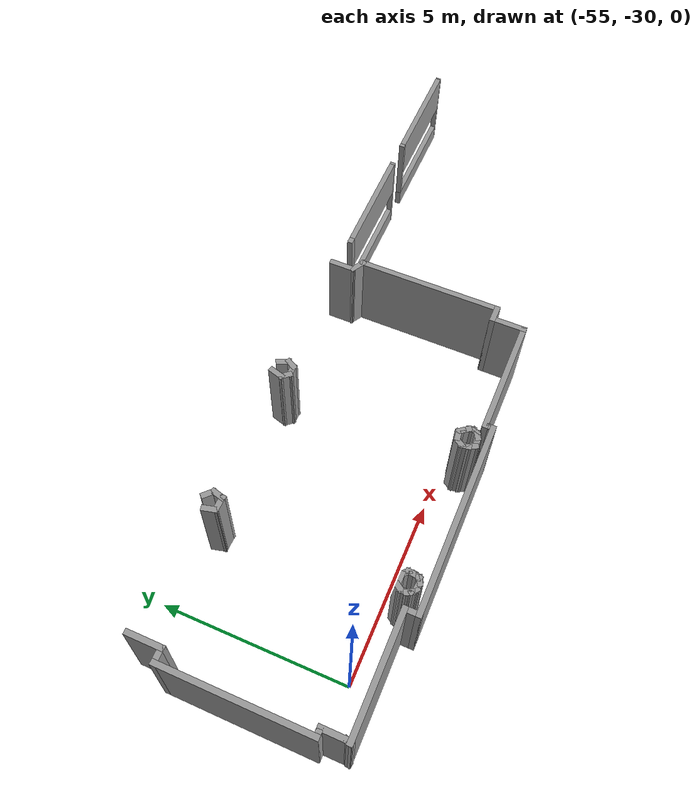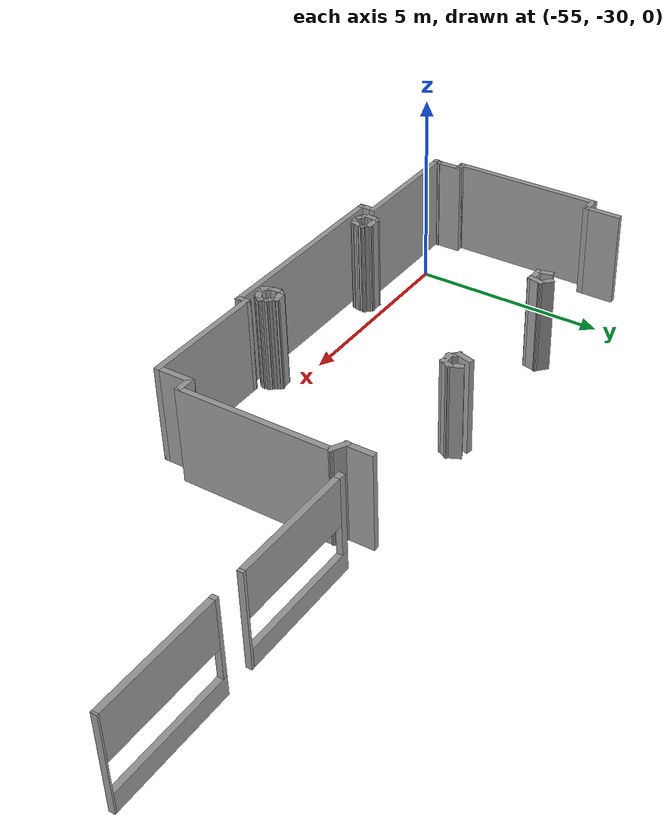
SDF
<sdf version="1.7">
 <model name="TD_n1">
  <pose>-28.4203 -15.5404 0 0 -0 0</pose>
  <link name="Wall_100">
   <collision name="Wall_100_Collision">
    <geometry><box><size>0.417153 0.15 2.5</size></box></geometry>
    <pose>0 0 1.25 0 -0 0</pose>
   </collision>
   <visual name="Wall_100_Visual">
    <pose>0 0 1.25 0 -0 0</pose>
    <geometry><box><size>0.417153 0.15 2.5</size></box></geometry>
    <material>
     <script><uri>file://media/materials/scripts/gazebo.material</uri><name>Gazebo/Grey</name></script>
     <ambient>1 1 1 1</ambient>
    </material>
    <meta><layer>0</layer></meta>
   </visual>
   <pose>-24.2621 -10.0568 0 0 -0 -1.81236</pose>
  </link>
  <link name="Wall_101">
   <collision name="Wall_101_Collision">
    <geometry><box><size>0.488531 0.15 2.5</size></box></geometry>
    <pose>0 0 1.25 0 -0 0</pose>
   </collision>
   <visual name="Wall_101_Visual">
    <pose>0 0 1.25 0 -0 0</pose>
    <geometry><box><size>0.488531 0.15 2.5</size></box></geometry>
    <material>
     <script><uri>file://media/materials/scripts/gazebo.material</uri><name>Gazebo/Grey</name></script>
     <ambient>1 1 1 1</ambient>
    </material>
    <meta><layer>0</layer></meta>
   </visual>
   <pose>-24.4633 -10.1808 0 0 -0 3.10827</pose>
  </link>
  <link name="Wall_102">
   <collision name="Wall_102_Collision">
    <geometry><box><size>0.429005 0.15 2.5</size></box></geometry>
    <pose>0 0 1.25 0 -0 0</pose>
   </collision>
   <visual name="Wall_102_Visual">
    <pose>0 0 1.25 0 -0 0</pose>
    <geometry><box><size>0.429005 0.15 2.5</size></box></geometry>
    <material>
     <script><uri>file://media/materials/scripts/gazebo.material</uri><name>Gazebo/Grey</name></script>
     <ambient>1 1 1 1</ambient>
    </material>
    <meta><layer>0</layer></meta>
   </visual>
   <pose>-24.6663 -10.0398 0 0 -0 1.81577</pose>
  </link>
  <link name="Wall_105">
   <collision name="Wall_105_Collision">
    <geometry><box><size>0.408933 0.15 2.5</size></box></geometry>
    <pose>0 0 1.25 0 -0 0</pose>
   </collision>
   <visual name="Wall_105_Visual">
    <pose>0 0 1.25 0 -0 0</pose>
    <geometry><box><size>0.408933 0.15 2.5</size></box></geometry>
    <material>
     <script><uri>file://media/materials/scripts/gazebo.material</uri><name>Gazebo/Grey</name></script>
     <ambient>1 1 1 1</ambient>
    </material>
    <meta><layer>0</layer></meta>
   </visual>
   <pose>-20.2753 -9.91578 0 0 -0 -1.12014</pose>
  </link>
  <link name="Wall_106">
   <collision name="Wall_106_Collision">
    <geometry><box><size>0.355222 0.15 2.5</size></box></geometry>
    <pose>0 0 1.25 0 -0 0</pose>
   </collision>
   <visual name="Wall_106_Visual">
    <pose>0 0 1.25 0 -0 0</pose>
    <geometry><box><size>0.355222 0.15 2.5</size></box></geometry>
    <material>
     <script><uri>file://media/materials/scripts/gazebo.material</uri><name>Gazebo/Grey</name></script>
     <ambient>1 1 1 1</ambient>
    </material>
    <meta><layer>0</layer></meta>
   </visual>
   <pose>-20.2678 -10.1225 0 0 -0 -2.06722</pose>
  </link>
  <link name="Wall_107">
   <collision name="Wall_107_Collision">
    <geometry><box><size>0.3906 0.15 2.5</size></box></geometry>
    <pose>0 0 1.25 0 -0 0</pose>
   </collision>
   <visual name="Wall_107_Visual">
    <pose>0 0 1.25 0 -0 0</pose>
    <geometry><box><size>0.3906 0.15 2.5</size></box></geometry>
    <material>
     <script><uri>file://media/materials/scripts/gazebo.material</uri><name>Gazebo/Grey</name></script>
     <ambient>1 1 1 1</ambient>
    </material>
    <meta><layer>0</layer></meta>
   </visual>
   <pose>-20.437 -10.2128 0 0 -0 3.14159</pose>
  </link>
  <link name="Wall_108">
   <collision name="Wall_108_Collision">
    <geometry><box><size>0.368561 0.15 2.5</size></box></geometry>
    <pose>0 0 1.25 0 -0 0</pose>
   </collision>
   <visual name="Wall_108_Visual">
    <pose>0 0 1.25 0 -0 0</pose>
    <geometry><box><size>0.368561 0.15 2.5</size></box></geometry>
    <material>
     <script><uri>file://media/materials/scripts/gazebo.material</uri><name>Gazebo/Grey</name></script>
     <ambient>1 1 1 1</ambient>
    </material>
    <meta><layer>0</layer></meta>
   </visual>
   <pose>-20.6287 -10.1301 0 0 -0 2.28315</pose>
  </link>
  <link name="Wall_109">
   <collision name="Wall_109_Collision">
    <geometry><box><size>0.454671 0.15 2.5</size></box></geometry>
    <pose>0 0 1.25 0 -0 0</pose>
   </collision>
   <visual name="Wall_109_Visual">
    <pose>0 0 1.25 0 -0 0</pose>
    <geometry><box><size>0.454671 0.15 2.5</size></box></geometry>
    <material>
     <script><uri>file://media/materials/scripts/gazebo.material</uri><name>Gazebo/Grey</name></script>
     <ambient>1 1 1 1</ambient>
    </material>
    <meta><layer>0</layer></meta>
   </visual>
   <pose>-20.6588 -9.90075 0 0 -0 1.29589</pose>
  </link>
  <link name="Wall_111">
   <collision name="Wall_111_Collision">
    <geometry><box><size>0.38911 0.15 2.5</size></box></geometry>
    <pose>0 0 1.25 0 -0 0</pose>
   </collision>
   <visual name="Wall_111_Visual">
    <pose>0 0 1.25 0 -0 0</pose>
    <geometry><box><size>0.38911 0.15 2.5</size></box></geometry>
    <material>
     <script><uri>file://media/materials/scripts/gazebo.material</uri><name>Gazebo/Grey</name></script>
     <ambient>1 1 1 1</ambient>
    </material>
    <meta><layer>0</layer></meta>
   </visual>
   <pose>-24.4695 -14.7595 0 0 -0 0</pose>
  </link>
  <link name="Wall_112">
   <collision name="Wall_112_Collision">
    <geometry><box><size>0.315269 0.15 2.5</size></box></geometry>
    <pose>0 0 1.25 0 -0 0</pose>
   </collision>
   <visual name="Wall_112_Visual">
    <pose>0 0 1.25 0 -0 0</pose>
    <geometry><box><size>0.315269 0.15 2.5</size></box></geometry>
    <material>
     <script><uri>file://media/materials/scripts/gazebo.material</uri><name>Gazebo/Grey</name></script>
     <ambient>1 1 1 1</ambient>
    </material>
    <meta><layer>0</layer></meta>
   </visual>
   <pose>-24.293 -14.8191 0 0 -0 -0.806672</pose>
  </link>
  <link name="Wall_113">
   <collision name="Wall_113_Collision">
    <geometry><box><size>0.299897 0.15 2.5</size></box></geometry>
    <pose>0 0 1.25 0 -0 0</pose>
   </collision>
   <visual name="Wall_113_Visual">
    <pose>0 0 1.25 0 -0 0</pose>
    <geometry><box><size>0.299897 0.15 2.5</size></box></geometry>
    <material>
     <script><uri>file://media/materials/scripts/gazebo.material</uri><name>Gazebo/Grey</name></script>
     <ambient>1 1 1 1</ambient>
    </material>
    <meta><layer>0</layer></meta>
   </visual>
   <pose>-24.2383 -14.9534 0 0 -0 -1.60412</pose>
  </link>
  <link name="Wall_114">
   <collision name="Wall_114_Collision">
    <geometry><box><size>0.279075 0.15 2.5</size></box></geometry>
    <pose>0 0 1.25 0 -0 0</pose>
   </collision>
   <visual name="Wall_114_Visual">
    <pose>0 0 1.25 0 -0 0</pose>
    <geometry><box><size>0.279075 0.15 2.5</size></box></geometry>
    <material>
     <script><uri>file://media/materials/scripts/gazebo.material</uri><name>Gazebo/Grey</name></script>
     <ambient>1 1 1 1</ambient>
    </material>
    <meta><layer>0</layer></meta>
   </visual>
   <pose>-24.2582 -15.0901 0 0 -0 -1.8438</pose>
  </link>
  <link name="Wall_115">
   <collision name="Wall_115_Collision">
    <geometry><box><size>0.281258 0.15 2.5</size></box></geometry>
    <pose>0 0 1.25 0 -0 0</pose>
   </collision>
   <visual name="Wall_115_Visual">
    <pose>0 0 1.25 0 -0 0</pose>
    <geometry><box><size>0.281258 0.15 2.5</size></box></geometry>
    <material>
     <script><uri>file://media/materials/scripts/gazebo.material</uri><name>Gazebo/Grey</name></script>
     <ambient>1 1 1 1</ambient>
    </material>
    <meta><layer>0</layer></meta>
   </visual>
   <pose>-24.3353 -15.1796 0 0 -0 -2.71183</pose>
  </link>
  <link name="Wall_116">
   <collision name="Wall_116_Collision">
    <geometry><box><size>0.304445 0.15 2.5</size></box></geometry>
    <pose>0 0 1.25 0 -0 0</pose>
   </collision>
   <visual name="Wall_116_Visual">
    <pose>0 0 1.25 0 -0 0</pose>
    <geometry><box><size>0.304445 0.15 2.5</size></box></geometry>
    <material>
     <script><uri>file://media/materials/scripts/gazebo.material</uri><name>Gazebo/Grey</name></script>
     <ambient>1 1 1 1</ambient>
    </material>
    <meta><layer>0</layer></meta>
   </visual>
   <pose>-24.472 -15.202 0 0 -0 3.07717</pose>
  </link>
  <link name="Wall_117">
   <collision name="Wall_117_Collision">
    <geometry><box><size>0.281258 0.15 2.5</size></box></geometry>
    <pose>0 0 1.25 0 -0 0</pose>
   </collision>
   <visual name="Wall_117_Visual">
    <pose>0 0 1.25 0 -0 0</pose>
    <geometry><box><size>0.281258 0.15 2.5</size></box></geometry>
    <material>
     <script><uri>file://media/materials/scripts/gazebo.material</uri><name>Gazebo/Grey</name></script>
     <ambient>1 1 1 1</ambient>
    </material>
    <meta><layer>0</layer></meta>
   </visual>
   <pose>-24.6013 -15.1572 0 0 -0 2.49052</pose>
  </link>
  <link name="Wall_118">
   <collision name="Wall_118_Collision">
    <geometry><box><size>0.267863 0.15 2.5</size></box></geometry>
    <pose>0 0 1.25 0 -0 0</pose>
   </collision>
   <visual name="Wall_118_Visual">
    <pose>0 0 1.25 0 -0 0</pose>
    <geometry><box><size>0.267863 0.15 2.5</size></box></geometry>
    <material>
     <script><uri>file://media/materials/scripts/gazebo.material</uri><name>Gazebo/Grey</name></script>
     <ambient>1 1 1 1</ambient>
    </material>
    <meta><layer>0</layer></meta>
   </visual>
   <pose>-24.6808 -15.0652 0 0 -0 2.05331</pose>
  </link>
  <link name="Wall_119">
   <collision name="Wall_119_Collision">
    <geometry><box><size>0.299484 0.15 2.5</size></box></geometry>
    <pose>0 0 1.25 0 -0 0</pose>
   </collision>
   <visual name="Wall_119_Visual">
    <pose>0 0 1.25 0 -0 0</pose>
    <geometry><box><size>0.299484 0.15 2.5</size></box></geometry>
    <material>
     <script><uri>file://media/materials/scripts/gazebo.material</uri><name>Gazebo/Grey</name></script>
     <ambient>1 1 1 1</ambient>
    </material>
    <meta><layer>0</layer></meta>
   </visual>
   <pose>-24.7032 -14.9385 0 0 -0 1.50423</pose>
  </link>
  <link name="Wall_120">
   <collision name="Wall_120_Collision">
    <geometry><box><size>0.271376 0.15 2.5</size></box></geometry>
    <pose>0 0 1.25 0 -0 0</pose>
   </collision>
   <visual name="Wall_120_Visual">
    <pose>0 0 1.25 0 -0 0</pose>
    <geometry><box><size>0.271376 0.15 2.5</size></box></geometry>
    <material>
     <script><uri>file://media/materials/scripts/gazebo.material</uri><name>Gazebo/Grey</name></script>
     <ambient>1 1 1 1</ambient>
    </material>
    <meta><layer>0</layer></meta>
   </visual>
   <pose>-24.6634 -14.8142 0 0 -0 0.96007</pose>
  </link>
  <link name="Wall_122">
   <collision name="Wall_122_Collision">
    <geometry><box><size>0.340556 0.15 2.5</size></box></geometry>
    <pose>0 0 1.25 0 -0 0</pose>
   </collision>
   <visual name="Wall_122_Visual">
    <pose>0 0 1.25 0 -0 0</pose>
    <geometry><box><size>0.340556 0.15 2.5</size></box></geometry>
    <material>
     <script><uri>file://media/materials/scripts/gazebo.material</uri><name>Gazebo/Grey</name></script>
     <ambient>1 1 1 1</ambient>
    </material>
    <meta><layer>0</layer></meta>
   </visual>
   <pose>-20.4822 -14.7371 0 0 -0 0.130827</pose>
  </link>
  <link name="Wall_123">
   <collision name="Wall_123_Collision">
    <geometry><box><size>0.252496 0.15 2.5</size></box></geometry>
    <pose>0 0 1.25 0 -0 0</pose>
   </collision>
   <visual name="Wall_123_Visual">
    <pose>0 0 1.25 0 -0 0</pose>
    <geometry><box><size>0.252496 0.15 2.5</size></box></geometry>
    <material>
     <script><uri>file://media/materials/scripts/gazebo.material</uri><name>Gazebo/Grey</name></script>
     <ambient>1 1 1 1</ambient>
    </material>
    <meta><layer>0</layer></meta>
   </visual>
   <pose>-20.3554 -14.7645 0 0 -0 -0.88848</pose>
  </link>
  <link name="Wall_124">
   <collision name="Wall_124_Collision">
    <geometry><box><size>0.306117 0.15 2.5</size></box></geometry>
    <pose>0 0 1.25 0 -0 0</pose>
   </collision>
   <visual name="Wall_124_Visual">
    <pose>0 0 1.25 0 -0 0</pose>
    <geometry><box><size>0.306117 0.15 2.5</size></box></geometry>
    <material>
     <script><uri>file://media/materials/scripts/gazebo.material</uri><name>Gazebo/Grey</name></script>
     <ambient>1 1 1 1</ambient>
    </material>
    <meta><layer>0</layer></meta>
   </visual>
   <pose>-20.2758 -14.8664 0 0 -0 -0.920926</pose>
  </link>
  <link name="Wall_125">
   <collision name="Wall_125_Collision">
    <geometry><box><size>0.271884 0.15 2.5</size></box></geometry>
    <pose>0 0 1.25 0 -0 0</pose>
   </collision>
   <visual name="Wall_125_Visual">
    <pose>0 0 1.25 0 -0 0</pose>
    <geometry><box><size>0.271884 0.15 2.5</size></box></geometry>
    <material>
     <script><uri>file://media/materials/scripts/gazebo.material</uri><name>Gazebo/Grey</name></script>
     <ambient>1 1 1 1</ambient>
    </material>
    <meta><layer>0</layer></meta>
   </visual>
   <pose>-20.2162 -14.9882 0 0 -0 -1.3654</pose>
  </link>
  <link name="Wall_126">
   <collision name="Wall_126_Collision">
    <geometry><box><size>0.265961 0.15 2.5</size></box></geometry>
    <pose>0 0 1.25 0 -0 0</pose>
   </collision>
   <visual name="Wall_126_Visual">
    <pose>0 0 1.25 0 -0 0</pose>
    <geometry><box><size>0.265961 0.15 2.5</size></box></geometry>
    <material>
     <script><uri>file://media/materials/scripts/gazebo.material</uri><name>Gazebo/Grey</name></script>
     <ambient>1 1 1 1</ambient>
    </material>
    <meta><layer>0</layer></meta>
   </visual>
   <pose>-20.2336 -15.0976 0 0 -0 -2.11122</pose>
  </link>
  <link name="Wall_127">
   <collision name="Wall_127_Collision">
    <geometry><box><size>0.281353 0.15 2.5</size></box></geometry>
    <pose>0 0 1.25 0 -0 0</pose>
   </collision>
   <visual name="Wall_127_Visual">
    <pose>0 0 1.25 0 -0 0</pose>
    <geometry><box><size>0.281353 0.15 2.5</size></box></geometry>
    <material>
     <script><uri>file://media/materials/scripts/gazebo.material</uri><name>Gazebo/Grey</name></script>
     <ambient>1 1 1 1</ambient>
    </material>
    <meta><layer>0</layer></meta>
   </visual>
   <pose>-20.3206 -15.1796 0 0 -0 -2.62714</pose>
  </link>
  <link name="Wall_128">
   <collision name="Wall_128_Collision">
    <geometry><box><size>0.385569 0.15 2.5</size></box></geometry>
    <pose>0 0 1.25 0 -0 0</pose>
   </collision>
   <visual name="Wall_128_Visual">
    <pose>0 0 1.25 0 -0 0</pose>
    <geometry><box><size>0.385569 0.15 2.5</size></box></geometry>
    <material>
     <script><uri>file://media/materials/scripts/gazebo.material</uri><name>Gazebo/Grey</name></script>
     <ambient>1 1 1 1</ambient>
    </material>
    <meta><layer>0</layer></meta>
   </visual>
   <pose>-20.4946 -15.2243 0 0 -0 -3.03561</pose>
  </link>
  <link name="Wall_129">
   <collision name="Wall_129_Collision">
    <geometry><box><size>0.325779 0.15 2.5</size></box></geometry>
    <pose>0 0 1.25 0 -0 0</pose>
   </collision>
   <visual name="Wall_129_Visual">
    <pose>0 0 1.25 0 -0 0</pose>
    <geometry><box><size>0.325779 0.15 2.5</size></box></geometry>
    <material>
     <script><uri>file://media/materials/scripts/gazebo.material</uri><name>Gazebo/Grey</name></script>
     <ambient>1 1 1 1</ambient>
    </material>
    <meta><layer>0</layer></meta>
   </visual>
   <pose>-20.6537 -15.1597 0 0 -0 2.0724</pose>
  </link>
  <link name="Wall_130">
   <collision name="Wall_130_Collision">
    <geometry><box><size>0.330702 0.15 2.5</size></box></geometry>
    <pose>0 0 1.25 0 -0 0</pose>
   </collision>
   <visual name="Wall_130_Visual">
    <pose>0 0 1.25 0 -0 0</pose>
    <geometry><box><size>0.330702 0.15 2.5</size></box></geometry>
    <material>
     <script><uri>file://media/materials/scripts/gazebo.material</uri><name>Gazebo/Grey</name></script>
     <ambient>1 1 1 1</ambient>
    </material>
    <meta><layer>0</layer></meta>
   </visual>
   <pose>-20.7084 -14.9932 0 0 -0 1.7088</pose>
  </link>
  <link name="Wall_131">
   <collision name="Wall_131_Collision">
    <geometry><box><size>0.300309 0.15 2.5</size></box></geometry>
    <pose>0 0 1.25 0 -0 0</pose>
   </collision>
   <visual name="Wall_131_Visual">
    <pose>0 0 1.25 0 -0 0</pose>
    <geometry><box><size>0.300309 0.15 2.5</size></box></geometry>
    <material>
     <script><uri>file://media/materials/scripts/gazebo.material</uri><name>Gazebo/Grey</name></script>
     <ambient>1 1 1 1</ambient>
    </material>
    <meta><layer>0</layer></meta>
   </visual>
   <pose>-20.6786 -14.8415 0 0 -0 0.97362</pose>
  </link>
  <link name="Wall_19">
   <pose>-10.4967 -9.95958 0 0 -0 3.14159</pose>
   <visual name="Wall_19_Visual_0">
    <pose>-1.55302 0 1.25 0 -0 0</pose>
    <geometry><box><size>0.043952 0.15 2.5</size></box></geometry>
    <material>
     <script><uri>file://media/materials/scripts/gazebo.material</uri><name>Gazebo/Grey</name></script>
     <ambient>1 1 1 1</ambient>
    </material>
    <meta><layer>0</layer></meta>
   </visual>
   <collision name="Wall_19_Collision_0">
    <geometry><box><size>0.043952 0.15 2.5</size></box></geometry>
    <pose>-1.55302 0 1.25 0 -0 0</pose>
   </collision>
   <visual name="Wall_19_Visual_1">
    <pose>0.021976 0 0.25 0 -0 0</pose>
    <geometry><box><size>3.10605 0.15 0.5</size></box></geometry>
    <material>
     <script><uri>file://media/materials/scripts/gazebo.material</uri><name>Gazebo/Grey</name></script>
     <ambient>1 1 1 1</ambient>
    </material>
    <meta><layer>0</layer></meta>
   </visual>
   <collision name="Wall_19_Collision_1">
    <geometry><box><size>3.10605 0.15 0.5</size></box></geometry>
    <pose>0.021976 0 0.25 0 -0 0</pose>
   </collision>
   <visual name="Wall_19_Visual_2">
    <pose>1.52198 0 1.5 0 -0 0</pose>
    <geometry><box><size>0.106048 0.15 2</size></box></geometry>
    <material>
     <script><uri>file://media/materials/scripts/gazebo.material</uri><name>Gazebo/Grey</name></script>
     <ambient>1 1 1 1</ambient>
    </material>
    <meta><layer>0</layer></meta>
   </visual>
   <collision name="Wall_19_Collision_2">
    <geometry><box><size>0.106048 0.15 2</size></box></geometry>
    <pose>1.52198 0 1.5 0 -0 0</pose>
   </collision>
   <visual name="Wall_19_Visual_3">
    <pose>-0.031048 0 1.9 0 -0 0</pose>
    <geometry><box><size>3 0.15 1.2</size></box></geometry>
    <material>
     <script><uri>file://media/materials/scripts/gazebo.material</uri><name>Gazebo/Grey</name></script>
     <ambient>1 1 1 1</ambient>
    </material>
    <meta><layer>0</layer></meta>
   </visual>
   <collision name="Wall_19_Collision_3">
    <geometry><box><size>3 0.15 1.2</size></box></geometry>
    <pose>-0.031048 0 1.9 0 -0 0</pose>
   </collision>
  </link>
  <link name="Wall_24">
   <pose>-14.3967 -9.95958 0 0 -0 3.14159</pose>
   <visual name="Wall_24_Visual_0">
    <pose>-1.58877 0 1.25 0 -0 0</pose>
    <geometry><box><size>0.07246 0.15 2.5</size></box></geometry>
    <material>
     <script><uri>file://media/materials/scripts/gazebo.material</uri><name>Gazebo/Grey</name></script>
     <ambient>1 1 1 1</ambient>
    </material>
    <meta><layer>0</layer></meta>
   </visual>
   <collision name="Wall_24_Collision_0">
    <geometry><box><size>0.07246 0.15 2.5</size></box></geometry>
    <pose>-1.58877 0 1.25 0 -0 0</pose>
   </collision>
   <visual name="Wall_24_Visual_1">
    <pose>0.03623 0 0.25 0 -0 0</pose>
    <geometry><box><size>3.17754 0.15 0.5</size></box></geometry>
    <material>
     <script><uri>file://media/materials/scripts/gazebo.material</uri><name>Gazebo/Grey</name></script>
     <ambient>1 1 1 1</ambient>
    </material>
    <meta><layer>0</layer></meta>
   </visual>
   <collision name="Wall_24_Collision_1">
    <geometry><box><size>3.17754 0.15 0.5</size></box></geometry>
    <pose>0.03623 0 0.25 0 -0 0</pose>
   </collision>
   <visual name="Wall_24_Visual_2">
    <pose>1.53623 0 1.5 0 -0 0</pose>
    <geometry><box><size>0.17754 0.15 2</size></box></geometry>
    <material>
     <script><uri>file://media/materials/scripts/gazebo.material</uri><name>Gazebo/Grey</name></script>
     <ambient>1 1 1 1</ambient>
    </material>
    <meta><layer>0</layer></meta>
   </visual>
   <collision name="Wall_24_Collision_2">
    <geometry><box><size>0.17754 0.15 2</size></box></geometry>
    <pose>1.53623 0 1.5 0 -0 0</pose>
   </collision>
   <visual name="Wall_24_Visual_3">
    <pose>-0.05254 0 1.9 0 -0 0</pose>
    <geometry><box><size>3 0.15 1.2</size></box></geometry>
    <material>
     <script><uri>file://media/materials/scripts/gazebo.material</uri><name>Gazebo/Grey</name></script>
     <ambient>1 1 1 1</ambient>
    </material>
    <meta><layer>0</layer></meta>
   </visual>
   <collision name="Wall_24_Collision_3">
    <geometry><box><size>3 0.15 1.2</size></box></geometry>
    <pose>-0.05254 0 1.9 0 -0 0</pose>
   </collision>
  </link>
  <link name="Wall_65">
   <collision name="Wall_65_Collision">
    <geometry><box><size>1 0.15 2.5</size></box></geometry>
    <pose>0 0 1.25 0 -0 0</pose>
   </collision>
   <visual name="Wall_65_Visual">
    <pose>0 0 1.25 0 -0 0</pose>
    <geometry><box><size>1 0.15 2.5</size></box></geometry>
    <material>
     <script><uri>file://media/materials/scripts/gazebo.material</uri><name>Gazebo/Grey</name></script>
     <ambient>1 1 1 1</ambient>
    </material>
    <meta><layer>0</layer></meta>
   </visual>
   <pose>-27.9953 -10.1438 0 0 -0 -1.5708</pose>
  </link>
  <link name="Wall_66">
   <collision name="Wall_66_Collision">
    <geometry><box><size>0.5 0.15 2.5</size></box></geometry>
    <pose>0 0 1.25 0 -0 0</pose>
   </collision>
   <visual name="Wall_66_Visual">
    <pose>0 0 1.25 0 -0 0</pose>
    <geometry><box><size>0.5 0.15 2.5</size></box></geometry>
    <material>
     <script><uri>file://media/materials/scripts/gazebo.material</uri><name>Gazebo/Grey</name></script>
     <ambient>1 1 1 1</ambient>
    </material>
    <meta><layer>0</layer></meta>
   </visual>
   <pose>-28.1703 -10.5688 0 0 -0 3.14159</pose>
  </link>
  <link name="Wall_68">
   <collision name="Wall_68_Collision">
    <geometry><box><size>4 0.15 2.5</size></box></geometry>
    <pose>0 0 1.25 0 -0 0</pose>
   </collision>
   <visual name="Wall_68_Visual">
    <pose>0 0 1.25 0 -0 0</pose>
    <geometry><box><size>4 0.15 2.5</size></box></geometry>
    <material>
     <script><uri>file://media/materials/scripts/gazebo.material</uri><name>Gazebo/Grey</name></script>
     <ambient>1 1 1 1</ambient>
    </material>
    <meta><layer>0</layer></meta>
   </visual>
   <pose>-28.3453 -12.4938 0 0 -0 -1.5708</pose>
  </link>
  <link name="Wall_69">
   <collision name="Wall_69_Collision">
    <geometry><box><size>0.25 0.15 2.5</size></box></geometry>
    <pose>0 0 1.25 0 -0 0</pose>
   </collision>
   <visual name="Wall_69_Visual">
    <pose>0 0 1.25 0 -0 0</pose>
    <geometry><box><size>0.25 0.15 2.5</size></box></geometry>
    <material>
     <script><uri>file://media/materials/scripts/gazebo.material</uri><name>Gazebo/Grey</name></script>
     <ambient>1 1 1 1</ambient>
    </material>
    <meta><layer>0</layer></meta>
   </visual>
   <pose>-28.2953 -14.4188 0 0 -0 0</pose>
  </link>
  <link name="Wall_70">
   <collision name="Wall_70_Collision">
    <geometry><box><size>0.25 0.15 2.5</size></box></geometry>
    <pose>0 0 1.25 0 -0 0</pose>
   </collision>
   <visual name="Wall_70_Visual">
    <pose>0 0 1.25 0 -0 0</pose>
    <geometry><box><size>0.25 0.15 2.5</size></box></geometry>
    <material>
     <script><uri>file://media/materials/scripts/gazebo.material</uri><name>Gazebo/Grey</name></script>
     <ambient>1 1 1 1</ambient>
    </material>
    <meta><layer>0</layer></meta>
   </visual>
   <pose>-28.1953 -14.4188 0 0 -0 0</pose>
  </link>
  <link name="Wall_71">
   <collision name="Wall_71_Collision">
    <geometry><box><size>0.75 0.15 2.5</size></box></geometry>
    <pose>0 0 1.25 0 -0 0</pose>
   </collision>
   <visual name="Wall_71_Visual">
    <pose>0 0 1.25 0 -0 0</pose>
    <geometry><box><size>0.75 0.15 2.5</size></box></geometry>
    <material>
     <script><uri>file://media/materials/scripts/gazebo.material</uri><name>Gazebo/Grey</name></script>
     <ambient>1 1 1 1</ambient>
    </material>
    <meta><layer>0</layer></meta>
   </visual>
   <pose>-28.1453 -14.7188 0 0 -0 -1.5708</pose>
  </link>
  <link name="Wall_72">
   <collision name="Wall_72_Collision">
    <geometry><box><size>0.25 0.15 2.5</size></box></geometry>
    <pose>0 0 1.25 0 -0 0</pose>
   </collision>
   <visual name="Wall_72_Visual">
    <pose>0 0 1.25 0 -0 0</pose>
    <geometry><box><size>0.25 0.15 2.5</size></box></geometry>
    <material>
     <script><uri>file://media/materials/scripts/gazebo.material</uri><name>Gazebo/Grey</name></script>
     <ambient>1 1 1 1</ambient>
    </material>
    <meta><layer>0</layer></meta>
   </visual>
   <pose>-28.1583 -15.0671 0 0 -0 -1.8326</pose>
  </link>
  <link name="Wall_73">
   <collision name="Wall_73_Collision">
    <geometry><box><size>3.25 0.15 2.5</size></box></geometry>
    <pose>0 0 1.25 0 -0 0</pose>
   </collision>
   <visual name="Wall_73_Visual">
    <pose>0 0 1.25 0 -0 0</pose>
    <geometry><box><size>3.25 0.15 2.5</size></box></geometry>
    <material>
     <script><uri>file://media/materials/scripts/gazebo.material</uri><name>Gazebo/Grey</name></script>
     <ambient>1 1 1 1</ambient>
    </material>
    <meta><layer>0</layer></meta>
   </visual>
   <pose>-26.6212 -15.1154 0 0 -0 0</pose>
  </link>
  <link name="Wall_74">
   <collision name="Wall_74_Collision">
    <geometry><box><size>0.5 0.15 2.5</size></box></geometry>
    <pose>0 0 1.25 0 -0 0</pose>
   </collision>
   <visual name="Wall_74_Visual">
    <pose>0 0 1.25 0 -0 0</pose>
    <geometry><box><size>0.5 0.15 2.5</size></box></geometry>
    <material>
     <script><uri>file://media/materials/scripts/gazebo.material</uri><name>Gazebo/Grey</name></script>
     <ambient>1 1 1 1</ambient>
    </material>
    <meta><layer>0</layer></meta>
   </visual>
   <pose>-25.0712 -15.2904 0 0 -0 -1.5708</pose>
  </link>
  <link name="Wall_75">
   <collision name="Wall_75_Collision">
    <geometry><box><size>5.25 0.15 2.5</size></box></geometry>
    <pose>0 0 1.25 0 -0 0</pose>
   </collision>
   <visual name="Wall_75_Visual">
    <pose>0 0 1.25 0 -0 0</pose>
    <geometry><box><size>5.25 0.15 2.5</size></box></geometry>
    <material>
     <script><uri>file://media/materials/scripts/gazebo.material</uri><name>Gazebo/Grey</name></script>
     <ambient>1 1 1 1</ambient>
    </material>
    <meta><layer>0</layer></meta>
   </visual>
   <pose>-22.5212 -15.4654 0 0 -0 0</pose>
  </link>
  <link name="Wall_76">
   <collision name="Wall_76_Collision">
    <geometry><box><size>0.25 0.15 2.5</size></box></geometry>
    <pose>0 0 1.25 0 -0 0</pose>
   </collision>
   <visual name="Wall_76_Visual">
    <pose>0 0 1.25 0 -0 0</pose>
    <geometry><box><size>0.25 0.15 2.5</size></box></geometry>
    <material>
     <script><uri>file://media/materials/scripts/gazebo.material</uri><name>Gazebo/Grey</name></script>
     <ambient>1 1 1 1</ambient>
    </material>
    <meta><layer>0</layer></meta>
   </visual>
   <pose>-19.9712 -15.4154 0 0 -0 1.5708</pose>
  </link>
  <link name="Wall_77">
   <collision name="Wall_77_Collision">
    <geometry><box><size>0.15 0.15 2.5</size></box></geometry>
    <pose>0 0 1.25 0 -0 0</pose>
   </collision>
   <visual name="Wall_77_Visual">
    <pose>0 0 1.25 0 -0 0</pose>
    <geometry><box><size>0.15 0.15 2.5</size></box></geometry>
    <material>
     <script><uri>file://media/materials/scripts/gazebo.material</uri><name>Gazebo/Grey</name></script>
     <ambient>1 1 1 1</ambient>
    </material>
    <meta><layer>0</layer></meta>
   </visual>
   <pose>-19.9712 -15.3654 0 0 -0 0</pose>
  </link>
  <link name="Wall_78">
   <collision name="Wall_78_Collision">
    <geometry><box><size>0.25 0.15 2.5</size></box></geometry>
    <pose>0 0 1.25 0 -0 0</pose>
   </collision>
   <visual name="Wall_78_Visual">
    <pose>0 0 1.25 0 -0 0</pose>
    <geometry><box><size>0.25 0.15 2.5</size></box></geometry>
    <material>
     <script><uri>file://media/materials/scripts/gazebo.material</uri><name>Gazebo/Grey</name></script>
     <ambient>1 1 1 1</ambient>
    </material>
    <meta><layer>0</layer></meta>
   </visual>
   <pose>-19.9712 -15.3154 0 0 -0 1.5708</pose>
  </link>
  <link name="Wall_79">
   <collision name="Wall_79_Collision">
    <geometry><box><size>3.25 0.15 2.5</size></box></geometry>
    <pose>0 0 1.25 0 -0 0</pose>
   </collision>
   <visual name="Wall_79_Visual">
    <pose>0 0 1.25 0 -0 0</pose>
    <geometry><box><size>3.25 0.15 2.5</size></box></geometry>
    <material>
     <script><uri>file://media/materials/scripts/gazebo.material</uri><name>Gazebo/Grey</name></script>
     <ambient>1 1 1 1</ambient>
    </material>
    <meta><layer>0</layer></meta>
   </visual>
   <pose>-18.4212 -15.2654 0 0 -0 0</pose>
  </link>
  <link name="Wall_80">
   <collision name="Wall_80_Collision">
    <geometry><box><size>1 0.15 2.5</size></box></geometry>
    <pose>0 0 1.25 0 -0 0</pose>
   </collision>
   <visual name="Wall_80_Visual">
    <pose>0 0 1.25 0 -0 0</pose>
    <geometry><box><size>1 0.15 2.5</size></box></geometry>
    <material>
     <script><uri>file://media/materials/scripts/gazebo.material</uri><name>Gazebo/Grey</name></script>
     <ambient>1 1 1 1</ambient>
    </material>
    <meta><layer>0</layer></meta>
   </visual>
   <pose>-16.8712 -14.8404 0 0 -0 1.5708</pose>
  </link>
  <link name="Wall_81">
   <collision name="Wall_81_Collision">
    <geometry><box><size>0.5 0.15 2.5</size></box></geometry>
    <pose>0 0 1.25 0 -0 0</pose>
   </collision>
   <visual name="Wall_81_Visual">
    <pose>0 0 1.25 0 -0 0</pose>
    <geometry><box><size>0.5 0.15 2.5</size></box></geometry>
    <material>
     <script><uri>file://media/materials/scripts/gazebo.material</uri><name>Gazebo/Grey</name></script>
     <ambient>1 1 1 1</ambient>
    </material>
    <meta><layer>0</layer></meta>
   </visual>
   <pose>-16.6962 -14.4154 0 0 -0 0</pose>
  </link>
  <link name="Wall_82">
   <collision name="Wall_82_Collision">
    <geometry><box><size>4 0.15 2.5</size></box></geometry>
    <pose>0 0 1.25 0 -0 0</pose>
   </collision>
   <visual name="Wall_82_Visual">
    <pose>0 0 1.25 0 -0 0</pose>
    <geometry><box><size>4 0.15 2.5</size></box></geometry>
    <material>
     <script><uri>file://media/materials/scripts/gazebo.material</uri><name>Gazebo/Grey</name></script>
     <ambient>1 1 1 1</ambient>
    </material>
    <meta><layer>0</layer></meta>
   </visual>
   <pose>-16.5212 -12.4904 0 0 -0 1.5708</pose>
  </link>
  <link name="Wall_83">
   <collision name="Wall_83_Collision">
    <geometry><box><size>0.5 0.15 2.5</size></box></geometry>
    <pose>0 0 1.25 0 -0 0</pose>
   </collision>
   <visual name="Wall_83_Visual">
    <pose>0 0 1.25 0 -0 0</pose>
    <geometry><box><size>0.5 0.15 2.5</size></box></geometry>
    <material>
     <script><uri>file://media/materials/scripts/gazebo.material</uri><name>Gazebo/Grey</name></script>
     <ambient>1 1 1 1</ambient>
    </material>
    <meta><layer>0</layer></meta>
   </visual>
   <pose>-16.6728 -10.4779 0 0 -0 2.61799</pose>
  </link>
  <link name="Wall_84">
   <collision name="Wall_84_Collision">
    <geometry><box><size>0.75 0.15 2.5</size></box></geometry>
    <pose>0 0 1.25 0 -0 0</pose>
   </collision>
   <visual name="Wall_84_Visual">
    <pose>0 0 1.25 0 -0 0</pose>
    <geometry><box><size>0.75 0.15 2.5</size></box></geometry>
    <material>
     <script><uri>file://media/materials/scripts/gazebo.material</uri><name>Gazebo/Grey</name></script>
     <ambient>1 1 1 1</ambient>
    </material>
    <meta><layer>0</layer></meta>
   </visual>
   <pose>-16.8243 -10.0904 0 0 -0 1.5708</pose>
  </link>
  <link name="Wall_99">
   <collision name="Wall_99_Collision">
    <geometry><box><size>0.40525 0.15 2.5</size></box></geometry>
    <pose>0 0 1.25 0 -0 0</pose>
   </collision>
   <visual name="Wall_99_Visual">
    <pose>0 0 1.25 0 -0 0</pose>
    <geometry><box><size>0.40525 0.15 2.5</size></box></geometry>
    <material>
     <script><uri>file://media/materials/scripts/gazebo.material</uri><name>Gazebo/Grey</name></script>
     <ambient>1 1 1 1</ambient>
    </material>
    <meta><layer>0</layer></meta>
   </visual>
   <pose>-24.3223 -9.83872 0 0 -0 -0.764568</pose>
  </link>
  <static>1</static>
 </model>
</sdf>
